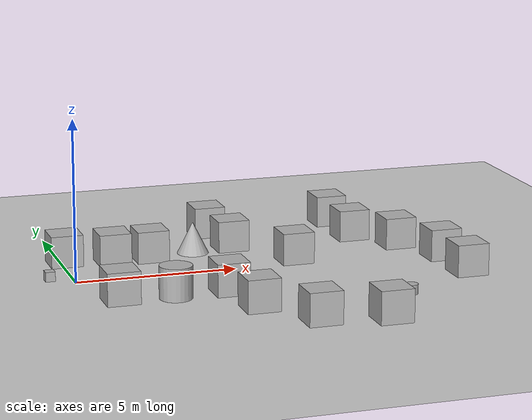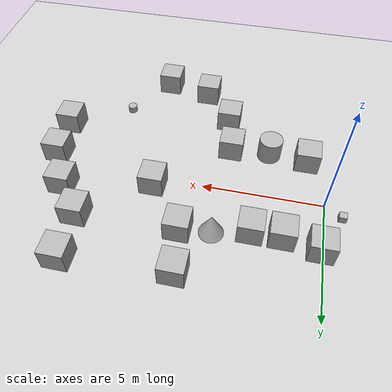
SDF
<sdf version='1.10'>
  <world name='empty'>
    <physics name='1ms' type='ignored'>
      <max_step_size>0.005</max_step_size>
      <real_time_factor>1</real_time_factor>
      <real_time_update_rate>200</real_time_update_rate>
    </physics>
    <plugin name='gz::sim::systems::Physics' filename='gz-sim-physics-system'/>
    <plugin name='gz::sim::systems::UserCommands' filename='gz-sim-user-commands-system'/>
    <plugin name='gz::sim::systems::SceneBroadcaster' filename='gz-sim-scene-broadcaster-system'/>
    <plugin name='gz::sim::systems::Contact' filename='gz-sim-contact-system'/>
    <plugin name='gz::sim::systems::Imu' filename='gz-sim-imu-system'/>
    <gravity>0 0 -9.8000000000000007</gravity>
    <magnetic_field>5.5644999999999998e-06 2.2875799999999999e-05 -4.2388400000000002e-05</magnetic_field>
    <atmosphere type='adiabatic'/>
    <scene>
      <ambient>0.400000006 0.400000006 0.400000006 1</ambient>
      <background>0.699999988 0.699999988 0.699999988 1</background>
      <shadows>true</shadows>
    </scene>
    <model name='ground_plane'>
      <static>true</static>
      <link name='link'>
        <collision name='collision'>
          <geometry>
            <plane>
              <normal>0 0 1</normal>
              <size>100 100</size>
            </plane>
          </geometry>
          <surface>
            <friction>
              <ode/>
            </friction>
            <bounce/>
            <contact/>
          </surface>
        </collision>
        <visual name='visual'>
          <geometry>
            <plane>
              <normal>0 0 1</normal>
              <size>100 100</size>
            </plane>
          </geometry>
          <material>
            <ambient>0.800000012 0.800000012 0.800000012 1</ambient>
            <diffuse>0.800000012 0.800000012 0.800000012 1</diffuse>
            <specular>0.800000012 0.800000012 0.800000012 1</specular>
          </material>
        </visual>
        <pose>0 0 0 0 0 0</pose>
        <inertial>
          <pose>0 0 0 0 0 0</pose>
          <mass>1</mass>
          <inertia>
            <ixx>1</ixx>
            <ixy>0</ixy>
            <ixz>0</ixz>
            <iyy>1</iyy>
            <iyz>0</iyz>
            <izz>1</izz>
          </inertia>
        </inertial>
        <enable_wind>false</enable_wind>
      </link>
      <pose>0 0 0 0 0 0</pose>
      <self_collide>false</self_collide>
    </model>
    <model name='cylinder'>
      <pose>9.1733617782592773 -4.0075302124023438 0.14999900273846256 -1.9957747477999968e-19 -5.9740054562810807e-19 1.293857139731839e-20</pose>
      <link name='cylinder_link'>
        <inertial>
          <inertia>
            <ixx>0.14499999999999999</ixx>
            <ixy>0</ixy>
            <ixz>0</ixz>
            <iyy>0.14499999999999999</iyy>
            <iyz>0</iyz>
            <izz>0.125</izz>
          </inertia>
          <mass>1</mass>
          <pose>0 0 0 0 0 0</pose>
        </inertial>
        <collision name='cylinder_collision'>
          <geometry>
            <cylinder>
              <radius>0.20000000000000001</radius>
              <length>0.29999999999999999</length>
            </cylinder>
          </geometry>
          <surface>
            <friction>
              <ode/>
            </friction>
            <bounce/>
            <contact/>
          </surface>
        </collision>
        <visual name='cylinder_visual'>
          <geometry>
            <cylinder>
              <radius>0.20000000000000001</radius>
              <length>0.29999999999999999</length>
            </cylinder>
          </geometry>
          <material>
            <ambient>0.300000012 0.300000012 0.300000012 1</ambient>
            <diffuse>0.699999988 0.699999988 0.699999988 1</diffuse>
            <specular>1 1 1 1</specular>
          </material>
          <plugin name='gz::sim::systems::Label' filename='gz-sim-label-system'>
            <label>10</label>
          </plugin>
        </visual>
        <pose>0 0 0 0 0 0</pose>
        <enable_wind>false</enable_wind>
      </link>
      <static>false</static>
      <self_collide>false</self_collide>
    </model>
    <model name='box'>
      <pose>-0.69999999999999996 0.5 0.14999943262126342 -3.4924299537586338e-19 -2.6803202413647317e-19 1.0683091745075206e-20</pose>
      <link name='box_link'>
        <inertial>
          <inertia>
            <ixx>0.16666</ixx>
            <ixy>0</ixy>
            <ixz>0</ixz>
            <iyy>0.16666</iyy>
            <iyz>0</iyz>
            <izz>0.16666</izz>
          </inertia>
          <mass>1</mass>
          <pose>0 0 0 0 0 0</pose>
        </inertial>
        <collision name='box_collision'>
          <geometry>
            <box>
              <size>0.29999999999999999 0.29999999999999999 0.29999999999999999</size>
            </box>
          </geometry>
          <surface>
            <friction>
              <ode/>
            </friction>
            <bounce/>
            <contact/>
          </surface>
        </collision>
        <visual name='box_visual'>
          <geometry>
            <box>
              <size>0.29999999999999999 0.29999999999999999 0.29999999999999999</size>
            </box>
          </geometry>
          <material>
            <ambient>0.300000012 0.300000012 0.300000012 1</ambient>
            <diffuse>0.699999988 0.699999988 0.699999988 1</diffuse>
            <specular>1 1 1 1</specular>
          </material>
        </visual>
        <pose>0 0 0 0 0 0</pose>
        <enable_wind>false</enable_wind>
      </link>
      <static>false</static>
      <self_collide>false</self_collide>
    </model>
    <model name='box_0'>
      <pose>0.11759500205516815 2.162360668182373 0.49999999990199806 2.9901143153875745e-21 -3.3728433599913006e-21 -2.1430761968054988e-22</pose>
      <link name='box_link'>
        <inertial>
          <inertia>
            <ixx>0.16666</ixx>
            <ixy>0</ixy>
            <ixz>0</ixz>
            <iyy>0.16666</iyy>
            <iyz>0</iyz>
            <izz>0.16666</izz>
          </inertia>
          <mass>1</mass>
          <pose>0 0 0 0 0 0</pose>
        </inertial>
        <collision name='box_collision'>
          <geometry>
            <box>
              <size>1 1 1</size>
            </box>
          </geometry>
          <surface>
            <friction>
              <ode/>
            </friction>
            <bounce/>
            <contact/>
          </surface>
        </collision>
        <visual name='box_visual'>
          <geometry>
            <box>
              <size>1 1 1</size>
            </box>
          </geometry>
          <material>
            <ambient>0.300000012 0.300000012 0.300000012 1</ambient>
            <diffuse>0.699999988 0.699999988 0.699999988 1</diffuse>
            <specular>1 1 1 1</specular>
          </material>
        </visual>
        <pose>0 0 0 0 0 0</pose>
        <enable_wind>false</enable_wind>
      </link>
      <static>false</static>
      <self_collide>false</self_collide>
    </model>
    <model name='box_1'>
      <pose>0.82973200082778931 -2.1872889995574951 0.49999999990199806 5.8359869403053825e-21 -6.3929044640293096e-21 -2.6761077099338002e-22</pose>
      <link name='box_link'>
        <inertial>
          <inertia>
            <ixx>0.16666</ixx>
            <ixy>0</ixy>
            <ixz>0</ixz>
            <iyy>0.16666</iyy>
            <iyz>0</iyz>
            <izz>0.16666</izz>
          </inertia>
          <mass>1</mass>
          <pose>0 0 0 0 0 0</pose>
        </inertial>
        <collision name='box_collision'>
          <geometry>
            <box>
              <size>1 1 1</size>
            </box>
          </geometry>
          <surface>
            <friction>
              <ode/>
            </friction>
            <bounce/>
            <contact/>
          </surface>
        </collision>
        <visual name='box_visual'>
          <geometry>
            <box>
              <size>1 1 1</size>
            </box>
          </geometry>
          <material>
            <ambient>0.300000012 0.300000012 0.300000012 1</ambient>
            <diffuse>0.699999988 0.699999988 0.699999988 1</diffuse>
            <specular>1 1 1 1</specular>
          </material>
        </visual>
        <pose>0 0 0 0 0 0</pose>
        <enable_wind>false</enable_wind>
      </link>
      <static>false</static>
      <self_collide>false</self_collide>
    </model>
    <model name='box_2'>
      <pose>1.5765500068664551 1.8887431621551514 0.49999999990199806 4.5622187269674448e-21 -3.4193213038829471e-21 -8.5612965228309722e-22</pose>
      <link name='box_link'>
        <inertial>
          <inertia>
            <ixx>0.16666</ixx>
            <ixy>0</ixy>
            <ixz>0</ixz>
            <iyy>0.16666</iyy>
            <iyz>0</iyz>
            <izz>0.16666</izz>
          </inertia>
          <mass>1</mass>
          <pose>0 0 0 0 0 0</pose>
        </inertial>
        <collision name='box_collision'>
          <geometry>
            <box>
              <size>1 1 1</size>
            </box>
          </geometry>
          <surface>
            <friction>
              <ode/>
            </friction>
            <bounce/>
            <contact/>
          </surface>
        </collision>
        <visual name='box_visual'>
          <geometry>
            <box>
              <size>1 1 1</size>
            </box>
          </geometry>
          <material>
            <ambient>0.300000012 0.300000012 0.300000012 1</ambient>
            <diffuse>0.699999988 0.699999988 0.699999988 1</diffuse>
            <specular>1 1 1 1</specular>
          </material>
        </visual>
        <pose>0 0 0 0 0 0</pose>
        <enable_wind>false</enable_wind>
      </link>
      <static>false</static>
      <self_collide>false</self_collide>
    </model>
    <model name='cylinder_0'>
      <pose>2.4556701183319092 -2.3631541728973389 0.49999899681693183 1.0606916719268718e-19 -2.9066078254121272e-19 1.9379608099271742e-20</pose>
      <link name='cylinder_link'>
        <inertial>
          <inertia>
            <ixx>0.14580000000000001</ixx>
            <ixy>0</ixy>
            <ixz>0</ixz>
            <iyy>0.14580000000000001</iyy>
            <iyz>0</iyz>
            <izz>0.125</izz>
          </inertia>
          <mass>1</mass>
          <pose>0 0 0 0 0 0</pose>
        </inertial>
        <collision name='cylinder_collision'>
          <geometry>
            <cylinder>
              <radius>0.5</radius>
              <length>1</length>
            </cylinder>
          </geometry>
          <surface>
            <friction>
              <ode/>
            </friction>
            <bounce/>
            <contact/>
          </surface>
        </collision>
        <visual name='cylinder_visual'>
          <geometry>
            <cylinder>
              <radius>0.5</radius>
              <length>1</length>
            </cylinder>
          </geometry>
          <material>
            <ambient>0.300000012 0.300000012 0.300000012 1</ambient>
            <diffuse>0.699999988 0.699999988 0.699999988 1</diffuse>
            <specular>1 1 1 1</specular>
          </material>
        </visual>
        <pose>0 0 0 0 0 0</pose>
        <enable_wind>false</enable_wind>
      </link>
      <static>false</static>
      <self_collide>false</self_collide>
    </model>
    <model name='box_3'>
      <pose>2.7764499187469482 1.8861045837402344 0.49999999990199806 5.3587132444577809e-22 -3.7896790201424766e-21 6.0974329959470654e-23</pose>
      <link name='box_link'>
        <inertial>
          <inertia>
            <ixx>0.16666</ixx>
            <ixy>0</ixy>
            <ixz>0</ixz>
            <iyy>0.16666</iyy>
            <iyz>0</iyz>
            <izz>0.16666</izz>
          </inertia>
          <mass>1</mass>
          <pose>0 0 0 0 0 0</pose>
        </inertial>
        <collision name='box_collision'>
          <geometry>
            <box>
              <size>1 1 1</size>
            </box>
          </geometry>
          <surface>
            <friction>
              <ode/>
            </friction>
            <bounce/>
            <contact/>
          </surface>
        </collision>
        <visual name='box_visual'>
          <geometry>
            <box>
              <size>1 1 1</size>
            </box>
          </geometry>
          <material>
            <ambient>0.300000012 0.300000012 0.300000012 1</ambient>
            <diffuse>0.699999988 0.699999988 0.699999988 1</diffuse>
            <specular>1 1 1 1</specular>
          </material>
        </visual>
        <pose>0 0 0 0 0 0</pose>
        <enable_wind>false</enable_wind>
      </link>
      <static>false</static>
      <self_collide>false</self_collide>
    </model>
    <model name='cone'>
      <pose>4.2433900851141413 2.1601705551383743 0.49999999993887678 -4.5001616600094928e-11 2.7611315439464686e-09 2.0774182191351217e-14</pose>
      <link name='cone_link'>
        <inertial>
          <inertia>
            <ixx>0.074999999999999997</ixx>
            <ixy>0</ixy>
            <ixz>0</ixz>
            <iyy>0.074999999999999997</iyy>
            <iyz>0</iyz>
            <izz>0.074999999999999997</izz>
          </inertia>
          <mass>1</mass>
          <pose>0 0 0 0 0 0</pose>
        </inertial>
        <collision name='cone_collision'>
          <geometry>
            <cone>
              <radius>0.5</radius>
              <length>1</length>
            </cone>
          </geometry>
          <surface>
            <friction>
              <ode/>
            </friction>
            <bounce/>
            <contact/>
          </surface>
        </collision>
        <visual name='cone_visual'>
          <geometry>
            <cone>
              <radius>0.5</radius>
              <length>1</length>
            </cone>
          </geometry>
          <material>
            <ambient>0.300000012 0.300000012 0.300000012 1</ambient>
            <diffuse>0.699999988 0.699999988 0.699999988 1</diffuse>
            <specular>1 1 1 1</specular>
          </material>
        </visual>
        <pose>0 0 0 0 0 0</pose>
        <enable_wind>false</enable_wind>
      </link>
      <static>false</static>
      <self_collide>false</self_collide>
    </model>
    <model name='box_4'>
      <pose>4.1127769638836957 -2.254570090736844 0.49999999990199806 6.2287739151293738e-22 9.3279666454713669e-22 -3.6315533669320137e-22</pose>
      <link name='box_link'>
        <inertial>
          <inertia>
            <ixx>0.16666</ixx>
            <ixy>0</ixy>
            <ixz>0</ixz>
            <iyy>0.16666</iyy>
            <iyz>0</iyz>
            <izz>0.16666</izz>
          </inertia>
          <mass>1</mass>
          <pose>0 0 0 0 0 0</pose>
        </inertial>
        <collision name='box_collision'>
          <geometry>
            <box>
              <size>1 1 1</size>
            </box>
          </geometry>
          <surface>
            <friction>
              <ode/>
            </friction>
            <bounce/>
            <contact/>
          </surface>
        </collision>
        <visual name='box_visual'>
          <geometry>
            <box>
              <size>1 1 1</size>
            </box>
          </geometry>
          <material>
            <ambient>0.300000012 0.300000012 0.300000012 1</ambient>
            <diffuse>0.699999988 0.699999988 0.699999988 1</diffuse>
            <specular>1 1 1 1</specular>
          </material>
        </visual>
        <pose>0 0 0 0 0 0</pose>
        <enable_wind>false</enable_wind>
      </link>
      <static>false</static>
      <self_collide>false</self_collide>
    </model>
    <model name='box_5'>
      <pose>5.5091725123238184 2.3389486830405737 0.49999999990199806 6.2287739151293738e-22 9.3279666454713669e-22 -3.6315533669320137e-22</pose>
      <link name='box_link'>
        <inertial>
          <inertia>
            <ixx>0.16666</ixx>
            <ixy>0</ixy>
            <ixz>0</ixz>
            <iyy>0.16666</iyy>
            <iyz>0</iyz>
            <izz>0.16666</izz>
          </inertia>
          <mass>1</mass>
          <pose>0 0 0 0 0 0</pose>
        </inertial>
        <collision name='box_collision'>
          <geometry>
            <box>
              <size>1 1 1</size>
            </box>
          </geometry>
          <surface>
            <friction>
              <ode/>
            </friction>
            <bounce/>
            <contact/>
          </surface>
        </collision>
        <visual name='box_visual'>
          <geometry>
            <box>
              <size>1 1 1</size>
            </box>
          </geometry>
          <material>
            <ambient>0.300000012 0.300000012 0.300000012 1</ambient>
            <diffuse>0.699999988 0.699999988 0.699999988 1</diffuse>
            <specular>1 1 1 1</specular>
          </material>
        </visual>
        <pose>0 0 0 0 0 0</pose>
        <enable_wind>false</enable_wind>
      </link>
      <static>false</static>
      <self_collide>false</self_collide>
    </model>
    <model name='box_7'>
      <pose>9.6043855714777635 2.4541895886462974 0.49999999990199806 6.2287739151293738e-22 9.3279666454713669e-22 -3.6315533669320137e-22</pose>
      <link name='box_link'>
        <inertial>
          <inertia>
            <ixx>0.16666</ixx>
            <ixy>0</ixy>
            <ixz>0</ixz>
            <iyy>0.16666</iyy>
            <iyz>0</iyz>
            <izz>0.16666</izz>
          </inertia>
          <mass>1</mass>
          <pose>0 0 0 0 0 0</pose>
        </inertial>
        <collision name='box_collision'>
          <geometry>
            <box>
              <size>1 1 1</size>
            </box>
          </geometry>
          <surface>
            <friction>
              <ode/>
            </friction>
            <bounce/>
            <contact/>
          </surface>
        </collision>
        <visual name='box_visual'>
          <geometry>
            <box>
              <size>1 1 1</size>
            </box>
          </geometry>
          <material>
            <ambient>0.300000012 0.300000012 0.300000012 1</ambient>
            <diffuse>0.699999988 0.699999988 0.699999988 1</diffuse>
            <specular>1 1 1 1</specular>
          </material>
        </visual>
        <pose>0 0 0 0 0 0</pose>
        <enable_wind>false</enable_wind>
      </link>
      <static>false</static>
      <self_collide>false</self_collide>
    </model>
    <model name='box_8'>
      <pose>10.675787399940312 1.108086482068928 0.49999999990199806 6.2287739151293738e-22 9.3279666454713669e-22 -3.6315533669320137e-22</pose>
      <link name='box_link'>
        <inertial>
          <inertia>
            <ixx>0.16666</ixx>
            <ixy>0</ixy>
            <ixz>0</ixz>
            <iyy>0.16666</iyy>
            <iyz>0</iyz>
            <izz>0.16666</izz>
          </inertia>
          <mass>1</mass>
          <pose>0 0 0 0 0 0</pose>
        </inertial>
        <collision name='box_collision'>
          <geometry>
            <box>
              <size>1 1 1</size>
            </box>
          </geometry>
          <surface>
            <friction>
              <ode/>
            </friction>
            <bounce/>
            <contact/>
          </surface>
        </collision>
        <visual name='box_visual'>
          <geometry>
            <box>
              <size>1 1 1</size>
            </box>
          </geometry>
          <material>
            <ambient>0.300000012 0.300000012 0.300000012 1</ambient>
            <diffuse>0.699999988 0.699999988 0.699999988 1</diffuse>
            <specular>1 1 1 1</specular>
          </material>
        </visual>
        <pose>0 0 0 0 0 0</pose>
        <enable_wind>false</enable_wind>
      </link>
      <static>false</static>
      <self_collide>false</self_collide>
    </model>
    <model name='box_9'>
      <pose>11.520199209690624 -0.57970230974181258 0.49999999990199806 6.2287739151293738e-22 9.3279666454713669e-22 -3.6315533669320137e-22</pose>
      <link name='box_link'>
        <inertial>
          <inertia>
            <ixx>0.16666</ixx>
            <ixy>0</ixy>
            <ixz>0</ixz>
            <iyy>0.16666</iyy>
            <iyz>0</iyz>
            <izz>0.16666</izz>
          </inertia>
          <mass>1</mass>
          <pose>0 0 0 0 0 0</pose>
        </inertial>
        <collision name='box_collision'>
          <geometry>
            <box>
              <size>1 1 1</size>
            </box>
          </geometry>
          <surface>
            <friction>
              <ode/>
            </friction>
            <bounce/>
            <contact/>
          </surface>
        </collision>
        <visual name='box_visual'>
          <geometry>
            <box>
              <size>1 1 1</size>
            </box>
          </geometry>
          <material>
            <ambient>0.300000012 0.300000012 0.300000012 1</ambient>
            <diffuse>0.699999988 0.699999988 0.699999988 1</diffuse>
            <specular>1 1 1 1</specular>
          </material>
        </visual>
        <pose>0 0 0 0 0 0</pose>
        <enable_wind>false</enable_wind>
      </link>
      <static>false</static>
      <self_collide>false</self_collide>
    </model>
    <model name='box_10'>
      <pose>4.4741473696789287 -4.0547408129728311 0.49999999990199806 6.2287739151293738e-22 9.3279666454713669e-22 -3.6315533669320137e-22</pose>
      <link name='box_link'>
        <inertial>
          <inertia>
            <ixx>0.16666</ixx>
            <ixy>0</ixy>
            <ixz>0</ixz>
            <iyy>0.16666</iyy>
            <iyz>0</iyz>
            <izz>0.16666</izz>
          </inertia>
          <mass>1</mass>
          <pose>0 0 0 0 0 0</pose>
        </inertial>
        <collision name='box_collision'>
          <geometry>
            <box>
              <size>1 1 1</size>
            </box>
          </geometry>
          <surface>
            <friction>
              <ode/>
            </friction>
            <bounce/>
            <contact/>
          </surface>
        </collision>
        <visual name='box_visual'>
          <geometry>
            <box>
              <size>1 1 1</size>
            </box>
          </geometry>
          <material>
            <ambient>0.300000012 0.300000012 0.300000012 1</ambient>
            <diffuse>0.699999988 0.699999988 0.699999988 1</diffuse>
            <specular>1 1 1 1</specular>
          </material>
        </visual>
        <pose>0 0 0 0 0 0</pose>
        <enable_wind>false</enable_wind>
      </link>
      <static>false</static>
      <self_collide>false</self_collide>
    </model>
    <model name='box_11'>
      <pose>5.7395114888937346 -5.7354852646842822 0.49999999990199806 6.2287739151293738e-22 9.3279666454713669e-22 -3.6315533669320137e-22</pose>
      <link name='box_link'>
        <inertial>
          <inertia>
            <ixx>0.16666</ixx>
            <ixy>0</ixy>
            <ixz>0</ixz>
            <iyy>0.16666</iyy>
            <iyz>0</iyz>
            <izz>0.16666</izz>
          </inertia>
          <mass>1</mass>
          <pose>0 0 0 0 0 0</pose>
        </inertial>
        <collision name='box_collision'>
          <geometry>
            <box>
              <size>1 1 1</size>
            </box>
          </geometry>
          <surface>
            <friction>
              <ode/>
            </friction>
            <bounce/>
            <contact/>
          </surface>
        </collision>
        <visual name='box_visual'>
          <geometry>
            <box>
              <size>1 1 1</size>
            </box>
          </geometry>
          <material>
            <ambient>0.300000012 0.300000012 0.300000012 1</ambient>
            <diffuse>0.699999988 0.699999988 0.699999988 1</diffuse>
            <specular>1 1 1 1</specular>
          </material>
        </visual>
        <pose>0 0 0 0 0 0</pose>
        <enable_wind>false</enable_wind>
      </link>
      <static>false</static>
      <self_collide>false</self_collide>
    </model>
    <model name='box_12'>
      <pose>7.6991815359221079 -6.1609301298865278 0.49999999990199806 6.2287739151293738e-22 9.3279666454713669e-22 -3.6315533669320137e-22</pose>
      <link name='box_link'>
        <inertial>
          <inertia>
            <ixx>0.16666</ixx>
            <ixy>0</ixy>
            <ixz>0</ixz>
            <iyy>0.16666</iyy>
            <iyz>0</iyz>
            <izz>0.16666</izz>
          </inertia>
          <mass>1</mass>
          <pose>0 0 0 0 0 0</pose>
        </inertial>
        <collision name='box_collision'>
          <geometry>
            <box>
              <size>1 1 1</size>
            </box>
          </geometry>
          <surface>
            <friction>
              <ode/>
            </friction>
            <bounce/>
            <contact/>
          </surface>
        </collision>
        <visual name='box_visual'>
          <geometry>
            <box>
              <size>1 1 1</size>
            </box>
          </geometry>
          <material>
            <ambient>0.300000012 0.300000012 0.300000012 1</ambient>
            <diffuse>0.699999988 0.699999988 0.699999988 1</diffuse>
            <specular>1 1 1 1</specular>
          </material>
        </visual>
        <pose>0 0 0 0 0 0</pose>
        <enable_wind>false</enable_wind>
      </link>
      <static>false</static>
      <self_collide>false</self_collide>
    </model>
    <model name='box_13'>
      <pose>11.61300673193174 -2.4489565715995472 0.49999999990199806 6.2287739151293738e-22 9.3279666454713669e-22 -3.6315533669320137e-22</pose>
      <link name='box_link'>
        <inertial>
          <inertia>
            <ixx>0.16666</ixx>
            <ixy>0</ixy>
            <ixz>0</ixz>
            <iyy>0.16666</iyy>
            <iyz>0</iyz>
            <izz>0.16666</izz>
          </inertia>
          <mass>1</mass>
          <pose>0 0 0 0 0 0</pose>
        </inertial>
        <collision name='box_collision'>
          <geometry>
            <box>
              <size>1 1 1</size>
            </box>
          </geometry>
          <surface>
            <friction>
              <ode/>
            </friction>
            <bounce/>
            <contact/>
          </surface>
        </collision>
        <visual name='box_visual'>
          <geometry>
            <box>
              <size>1 1 1</size>
            </box>
          </geometry>
          <material>
            <ambient>0.300000012 0.300000012 0.300000012 1</ambient>
            <diffuse>0.699999988 0.699999988 0.699999988 1</diffuse>
            <specular>1 1 1 1</specular>
          </material>
        </visual>
        <pose>0 0 0 0 0 0</pose>
        <enable_wind>false</enable_wind>
      </link>
      <static>false</static>
      <self_collide>false</self_collide>
    </model>
    <model name='box_6'>
      <pose>5.2543695346076449 4.1704731406002811 0.49999999990199806 6.2287739151293738e-22 9.3279666454713669e-22 -3.6315533669320137e-22</pose>
      <link name='box_link'>
        <inertial>
          <inertia>
            <ixx>0.16666</ixx>
            <ixy>0</ixy>
            <ixz>0</ixz>
            <iyy>0.16666</iyy>
            <iyz>0</iyz>
            <izz>0.16666</izz>
          </inertia>
          <mass>1</mass>
          <pose>0 0 0 0 0 0</pose>
        </inertial>
        <collision name='box_collision'>
          <geometry>
            <box>
              <size>1 1 1</size>
            </box>
          </geometry>
          <surface>
            <friction>
              <ode/>
            </friction>
            <bounce/>
            <contact/>
          </surface>
        </collision>
        <visual name='box_visual'>
          <geometry>
            <box>
              <size>1 1 1</size>
            </box>
          </geometry>
          <material>
            <ambient>0.300000012 0.300000012 0.300000012 1</ambient>
            <diffuse>0.699999988 0.699999988 0.699999988 1</diffuse>
            <specular>1 1 1 1</specular>
          </material>
        </visual>
        <pose>0 0 0 0 0 0</pose>
        <enable_wind>false</enable_wind>
      </link>
      <static>false</static>
      <self_collide>false</self_collide>
    </model>
    <model name='box_14'>
      <pose>9.5150832103623468 4.4269523228730847 0.49999999990199806 6.2287739151293738e-22 9.3279666454713669e-22 -3.6315533669320137e-22</pose>
      <link name='box_link'>
        <inertial>
          <inertia>
            <ixx>0.16666</ixx>
            <ixy>0</ixy>
            <ixz>0</ixz>
            <iyy>0.16666</iyy>
            <iyz>0</iyz>
            <izz>0.16666</izz>
          </inertia>
          <mass>1</mass>
          <pose>0 0 0 0 0 0</pose>
        </inertial>
        <collision name='box_collision'>
          <geometry>
            <box>
              <size>1 1 1</size>
            </box>
          </geometry>
          <surface>
            <friction>
              <ode/>
            </friction>
            <bounce/>
            <contact/>
          </surface>
        </collision>
        <visual name='box_visual'>
          <geometry>
            <box>
              <size>1 1 1</size>
            </box>
          </geometry>
          <material>
            <ambient>0.300000012 0.300000012 0.300000012 1</ambient>
            <diffuse>0.699999988 0.699999988 0.699999988 1</diffuse>
            <specular>1 1 1 1</specular>
          </material>
        </visual>
        <pose>0 0 0 0 0 0</pose>
        <enable_wind>false</enable_wind>
      </link>
      <static>false</static>
      <self_collide>false</self_collide>
    </model>
    <model name='box_15'>
      <pose>7.0046874731198177 0.37132729542926235 0.49999999990199806 6.2287739151293738e-22 9.3279666454713669e-22 -3.6315533669320137e-22</pose>
      <link name='box_link'>
        <inertial>
          <inertia>
            <ixx>0.16666</ixx>
            <ixy>0</ixy>
            <ixz>0</ixz>
            <iyy>0.16666</iyy>
            <iyz>0</iyz>
            <izz>0.16666</izz>
          </inertia>
          <mass>1</mass>
          <pose>0 0 0 0 0 0</pose>
        </inertial>
        <collision name='box_collision'>
          <geometry>
            <box>
              <size>1 1 1</size>
            </box>
          </geometry>
          <surface>
            <friction>
              <ode/>
            </friction>
            <bounce/>
            <contact/>
          </surface>
        </collision>
        <visual name='box_visual'>
          <geometry>
            <box>
              <size>1 1 1</size>
            </box>
          </geometry>
          <material>
            <ambient>0.300000012 0.300000012 0.300000012 1</ambient>
            <diffuse>0.699999988 0.699999988 0.699999988 1</diffuse>
            <specular>1 1 1 1</specular>
          </material>
        </visual>
        <pose>0 0 0 0 0 0</pose>
        <enable_wind>false</enable_wind>
      </link>
      <static>false</static>
      <self_collide>false</self_collide>
    </model>
    <light name='sun' type='directional'>
      <pose>0 0 10 0 0 0</pose>
      <cast_shadows>true</cast_shadows>
      <intensity>1</intensity>
      <direction>-0.5 0.10000000000000001 -0.90000000000000002</direction>
      <diffuse>0.800000012 0.800000012 0.800000012 1</diffuse>
      <specular>0.200000003 0.200000003 0.200000003 1</specular>
      <attenuation>
        <range>1000</range>
        <linear>0.01</linear>
        <constant>0.90000000000000002</constant>
        <quadratic>0.001</quadratic>
      </attenuation>
      <spot>
        <inner_angle>0</inner_angle>
        <outer_angle>0</outer_angle>
        <falloff>0</falloff>
      </spot>
    </light>
  </world>
</sdf>
